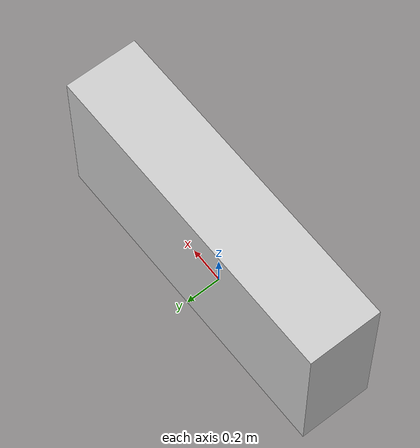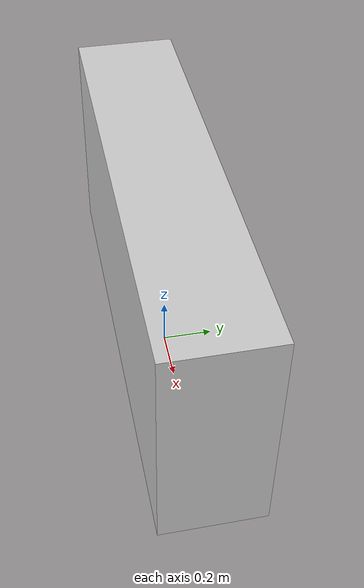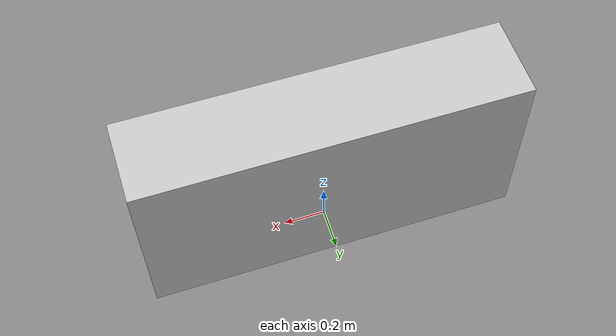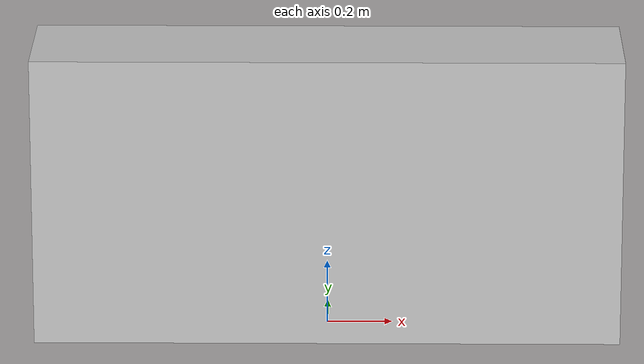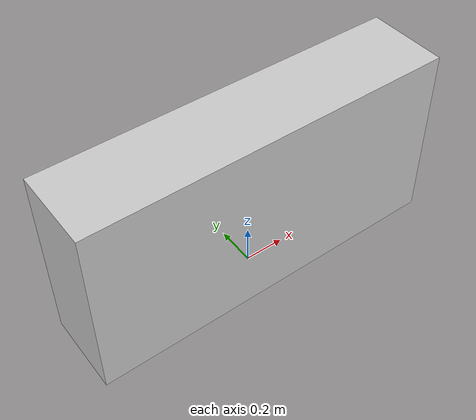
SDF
<?xml version="1.0"?>
<sdf version="1.6">
  <model name="ddw/sidetable">
    <link name="1_link">
      <collision name="1_col">
        <geometry>
          <box>
            <size>1.8 0.4 0.9</size>
          </box>
        </geometry>
      </collision>
      <visual name="1_vis">
        <geometry>
          <box>
            <size>1.8 0.4 0.9</size>
          </box>
        </geometry>
        <material>
          <ambient>0.8 0.8 0.8 1</ambient>
        </material>
      </visual>
      <pose>0.0 0.0 0.45 0 0 0</pose>
    </link>
    <static>true</static>
  </model>
</sdf>
